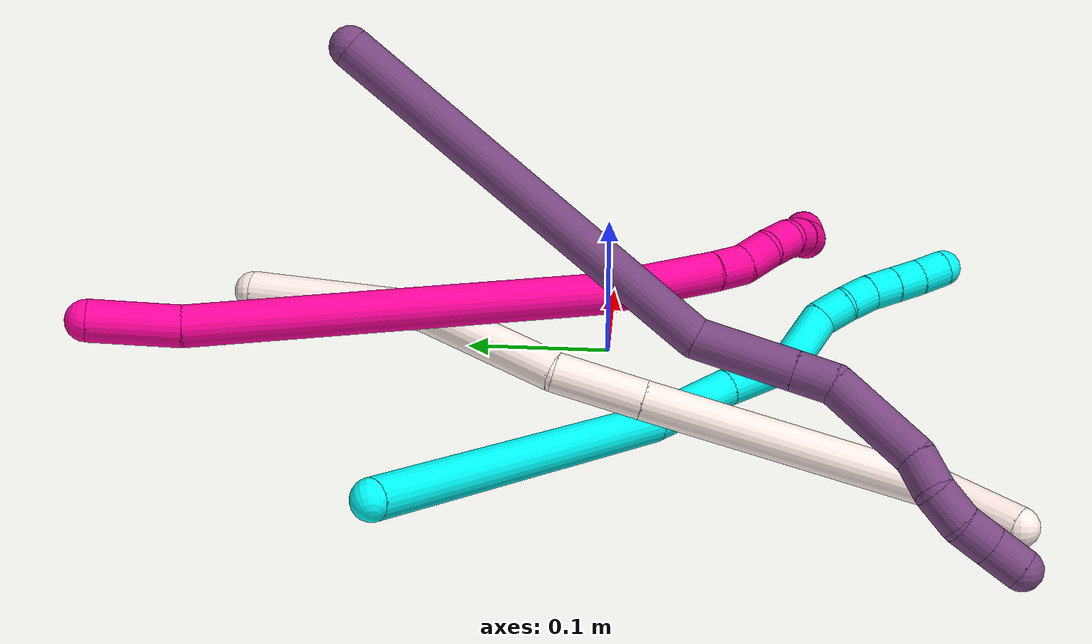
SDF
<sdf version="1.7">
 <world name="default">
  <model name="3">
   <static>0</static>
   <link name="3">
    <collision name="collision-cylinder-e_1_1_4">
     <pose>0.080593 -0.060833 -0.06502 2.38946 0.735635 1.54643</pose>
     <geometry><cylinder><radius>0.0125</radius><length>0.240195</length></cylinder></geometry>
     <surface>
      <friction><ode><mu>1.16</mu><mu2>1.16</mu2><slip1>0</slip1><slip2>0</slip2></ode></friction>
      <contact><ode><kp>1e+06</kp><kd>1</kd><max_vel>0</max_vel><min_depth>0.001</min_depth></ode></contact>
     </surface>
    </collision>
    <visual name="visual-cylinder-e_1_1_4">
     <pose>0.080593 -0.060833 -0.06502 2.38946 0.735635 1.54643</pose>
     <geometry><cylinder><radius>0.0125</radius><length>0.240195</length></cylinder></geometry>
     <material><ambient>0.003922 1 0.996078 1</ambient></material>
    </visual>
    <collision name="collision-cylinder-e_2_4_5">
     <pose>0.187488 -0.127334 -0.144633 2.77107 1.03395 2.50477</pose>
     <geometry><cylinder><radius>0.0125</radius><length>0.061216</length></cylinder></geometry>
     <surface>
      <friction><ode><mu>1.16</mu><mu2>1.16</mu2><slip1>0</slip1><slip2>0</slip2></ode></friction>
      <contact><ode><kp>1e+06</kp><kd>1</kd><max_vel>0</max_vel><min_depth>0.001</min_depth></ode></contact>
     </surface>
    </collision>
    <visual name="visual-cylinder-e_2_4_5">
     <pose>0.187488 -0.127334 -0.144633 2.77107 1.03395 2.50477</pose>
     <geometry><cylinder><radius>0.0125</radius><length>0.061216</length></cylinder></geometry>
     <material><ambient>0.003922 1 0.996078 1</ambient></material>
    </visual>
    <collision name="collision-cylinder-e_3_5_6">
     <pose>0.23682 -0.13837 -0.170053 2.68146 1.0875 2.40236</pose>
     <geometry><cylinder><radius>0.0125</radius><length>0.052018</length></cylinder></geometry>
     <surface>
      <friction><ode><mu>1.16</mu><mu2>1.16</mu2><slip1>0</slip1><slip2>0</slip2></ode></friction>
      <contact><ode><kp>1e+06</kp><kd>1</kd><max_vel>0</max_vel><min_depth>0.001</min_depth></ode></contact>
     </surface>
    </collision>
    <visual name="visual-cylinder-e_3_5_6">
     <pose>0.23682 -0.13837 -0.170053 2.68146 1.0875 2.40236</pose>
     <geometry><cylinder><radius>0.0125</radius><length>0.052018</length></cylinder></geometry>
     <material><ambient>0.003922 1 0.996078 1</ambient></material>
    </visual>
    <collision name="collision-cylinder-e_4_6_7">
     <pose>0.274012 -0.14285 -0.197522 -3.08834 0.704426 -2.99693</pose>
     <geometry><cylinder><radius>0.0125</radius><length>0.043736</length></cylinder></geometry>
     <surface>
      <friction><ode><mu>1.16</mu><mu2>1.16</mu2><slip1>0</slip1><slip2>0</slip2></ode></friction>
      <contact><ode><kp>1e+06</kp><kd>1</kd><max_vel>0</max_vel><min_depth>0.001</min_depth></ode></contact>
     </surface>
    </collision>
    <visual name="visual-cylinder-e_4_6_7">
     <pose>0.274012 -0.14285 -0.197522 -3.08834 0.704426 -2.99693</pose>
     <geometry><cylinder><radius>0.0125</radius><length>0.043736</length></cylinder></geometry>
     <material><ambient>0.003922 1 0.996078 1</ambient></material>
    </visual>
    <collision name="collision-cylinder-e_5_7_8">
     <pose>0.298291 -0.141198 -0.218164 -2.95271 1.18792 -2.86287</pose>
     <geometry><cylinder><radius>0.0125</radius><length>0.021816</length></cylinder></geometry>
     <surface>
      <friction><ode><mu>1.16</mu><mu2>1.16</mu2><slip1>0</slip1><slip2>0</slip2></ode></friction>
      <contact><ode><kp>1e+06</kp><kd>1</kd><max_vel>0</max_vel><min_depth>0.001</min_depth></ode></contact>
     </surface>
    </collision>
    <visual name="visual-cylinder-e_5_7_8">
     <pose>0.298291 -0.141198 -0.218164 -2.95271 1.18792 -2.86287</pose>
     <geometry><cylinder><radius>0.0125</radius><length>0.021816</length></cylinder></geometry>
     <material><ambient>0.003922 1 0.996078 1</ambient></material>
    </visual>
    <collision name="collision-cylinder-e_6_8_9">
     <pose>0.317507 -0.141784 -0.226795 2.85741 1.08349 2.67484</pose>
     <geometry><cylinder><radius>0.0125</radius><length>0.020593</length></cylinder></geometry>
     <surface>
      <friction><ode><mu>1.16</mu><mu2>1.16</mu2><slip1>0</slip1><slip2>0</slip2></ode></friction>
      <contact><ode><kp>1e+06</kp><kd>1</kd><max_vel>0</max_vel><min_depth>0.001</min_depth></ode></contact>
     </surface>
    </collision>
    <visual name="visual-cylinder-e_6_8_9">
     <pose>0.317507 -0.141784 -0.226795 2.85741 1.08349 2.67484</pose>
     <geometry><cylinder><radius>0.0125</radius><length>0.020593</length></cylinder></geometry>
     <material><ambient>0.003922 1 0.996078 1</ambient></material>
    </visual>
    <collision name="collision-cylinder-e_7_9_10">
     <pose>0.335987 -0.144768 -0.234488 2.6523 1.21628 2.45294</pose>
     <geometry><cylinder><radius>0.0125</radius><length>0.020007</length></cylinder></geometry>
     <surface>
      <friction><ode><mu>1.16</mu><mu2>1.16</mu2><slip1>0</slip1><slip2>0</slip2></ode></friction>
      <contact><ode><kp>1e+06</kp><kd>1</kd><max_vel>0</max_vel><min_depth>0.001</min_depth></ode></contact>
     </surface>
    </collision>
    <visual name="visual-cylinder-e_7_9_10">
     <pose>0.335987 -0.144768 -0.234488 2.6523 1.21628 2.45294</pose>
     <geometry><cylinder><radius>0.0125</radius><length>0.020007</length></cylinder></geometry>
     <material><ambient>0.003922 1 0.996078 1</ambient></material>
    </visual>
    <collision name="collision-cylinder-e_8_10_11">
     <pose>0.354781 -0.148074 -0.240721 2.6557 1.20708 2.45131</pose>
     <geometry><cylinder><radius>0.0125</radius><length>0.020144</length></cylinder></geometry>
     <surface>
      <friction><ode><mu>1.16</mu><mu2>1.16</mu2><slip1>0</slip1><slip2>0</slip2></ode></friction>
      <contact><ode><kp>1e+06</kp><kd>1</kd><max_vel>0</max_vel><min_depth>0.001</min_depth></ode></contact>
     </surface>
    </collision>
    <visual name="visual-cylinder-e_8_10_11">
     <pose>0.354781 -0.148074 -0.240721 2.6557 1.20708 2.45131</pose>
     <geometry><cylinder><radius>0.0125</radius><length>0.020144</length></cylinder></geometry>
     <material><ambient>0.003922 1 0.996078 1</ambient></material>
    </visual>
    <collision name="collision-cylinder-e_9_11_2">
     <pose>0.373804 -0.150683 -0.246978 2.84717 1.24684 2.73486</pose>
     <geometry><cylinder><radius>0.0125</radius><length>0.020275</length></cylinder></geometry>
     <surface>
      <friction><ode><mu>1.16</mu><mu2>1.16</mu2><slip1>0</slip1><slip2>0</slip2></ode></friction>
      <contact><ode><kp>1e+06</kp><kd>1</kd><max_vel>0</max_vel><min_depth>0.001</min_depth></ode></contact>
     </surface>
    </collision>
    <visual name="visual-cylinder-e_9_11_2">
     <pose>0.373804 -0.150683 -0.246978 2.84717 1.24684 2.73486</pose>
     <geometry><cylinder><radius>0.0125</radius><length>0.020275</length></cylinder></geometry>
     <material><ambient>0.003922 1 0.996078 1</ambient></material>
    </visual>
    <collision name="collision-sphere-2">
     <pose>0.383415 -0.15162 -0.250066 0 -0 0</pose>
     <geometry><sphere><radius>0.0125</radius></sphere></geometry>
     <surface>
      <friction><ode><mu>1.16</mu><mu2>1.16</mu2><slip1>0</slip1><slip2>0</slip2></ode></friction>
      <contact><ode><kp>1e+06</kp><kd>1</kd><max_vel>0</max_vel><min_depth>0.001</min_depth></ode></contact>
     </surface>
    </collision>
    <visual name="visual-sphere-2">
     <pose>0.383415 -0.15162 -0.250066 0 -0 0</pose>
     <geometry><sphere><radius>0.0125</radius></sphere></geometry>
     <material><ambient>0.003922 1 0.996078 1</ambient></material>
    </visual>
    <collision name="collision-sphere-11">
     <pose>0.364194 -0.149747 -0.24389 0 -0 0</pose>
     <geometry><sphere><radius>0.0125</radius></sphere></geometry>
     <surface>
      <friction><ode><mu>1.16</mu><mu2>1.16</mu2><slip1>0</slip1><slip2>0</slip2></ode></friction>
      <contact><ode><kp>1e+06</kp><kd>1</kd><max_vel>0</max_vel><min_depth>0.001</min_depth></ode></contact>
     </surface>
    </collision>
    <visual name="visual-sphere-11">
     <pose>0.364194 -0.149747 -0.24389 0 -0 0</pose>
     <geometry><sphere><radius>0.0125</radius></sphere></geometry>
     <material><ambient>0.003922 1 0.996078 1</ambient></material>
    </visual>
    <collision name="collision-sphere-10">
     <pose>0.345368 -0.1464 -0.237553 0 -0 0</pose>
     <geometry><sphere><radius>0.0125</radius></sphere></geometry>
     <surface>
      <friction><ode><mu>1.16</mu><mu2>1.16</mu2><slip1>0</slip1><slip2>0</slip2></ode></friction>
      <contact><ode><kp>1e+06</kp><kd>1</kd><max_vel>0</max_vel><min_depth>0.001</min_depth></ode></contact>
     </surface>
    </collision>
    <visual name="visual-sphere-10">
     <pose>0.345368 -0.1464 -0.237553 0 -0 0</pose>
     <geometry><sphere><radius>0.0125</radius></sphere></geometry>
     <material><ambient>0.003922 1 0.996078 1</ambient></material>
    </visual>
    <collision name="collision-sphere-9">
     <pose>0.326605 -0.143136 -0.231423 0 -0 0</pose>
     <geometry><sphere><radius>0.0125</radius></sphere></geometry>
     <surface>
      <friction><ode><mu>1.16</mu><mu2>1.16</mu2><slip1>0</slip1><slip2>0</slip2></ode></friction>
      <contact><ode><kp>1e+06</kp><kd>1</kd><max_vel>0</max_vel><min_depth>0.001</min_depth></ode></contact>
     </surface>
    </collision>
    <visual name="visual-sphere-9">
     <pose>0.326605 -0.143136 -0.231423 0 -0 0</pose>
     <geometry><sphere><radius>0.0125</radius></sphere></geometry>
     <material><ambient>0.003922 1 0.996078 1</ambient></material>
    </visual>
    <collision name="collision-sphere-4">
     <pose>0.161185 -0.121666 -0.130041 0 -0 0</pose>
     <geometry><sphere><radius>0.0125</radius></sphere></geometry>
     <surface>
      <friction><ode><mu>1.16</mu><mu2>1.16</mu2><slip1>0</slip1><slip2>0</slip2></ode></friction>
      <contact><ode><kp>1e+06</kp><kd>1</kd><max_vel>0</max_vel><min_depth>0.001</min_depth></ode></contact>
     </surface>
    </collision>
    <visual name="visual-sphere-4">
     <pose>0.161185 -0.121666 -0.130041 0 -0 0</pose>
     <geometry><sphere><radius>0.0125</radius></sphere></geometry>
     <material><ambient>0.003922 1 0.996078 1</ambient></material>
    </visual>
    <collision name="collision-sphere-1">
     <geometry><sphere><radius>0.0125</radius></sphere></geometry>
     <surface>
      <friction><ode><mu>1.16</mu><mu2>1.16</mu2><slip1>0</slip1><slip2>0</slip2></ode></friction>
      <contact><ode><kp>1e+06</kp><kd>1</kd><max_vel>0</max_vel><min_depth>0.001</min_depth></ode></contact>
     </surface>
    </collision>
    <visual name="visual-sphere-1">
     <geometry><sphere><radius>0.0125</radius></sphere></geometry>
     <material><ambient>0.003922 1 0.996078 1</ambient></material>
    </visual>
    <collision name="collision-sphere-8">
     <pose>0.308409 -0.140433 -0.222167 0 -0 0</pose>
     <geometry><sphere><radius>0.0125</radius></sphere></geometry>
     <surface>
      <friction><ode><mu>1.16</mu><mu2>1.16</mu2><slip1>0</slip1><slip2>0</slip2></ode></friction>
      <contact><ode><kp>1e+06</kp><kd>1</kd><max_vel>0</max_vel><min_depth>0.001</min_depth></ode></contact>
     </surface>
    </collision>
    <visual name="visual-sphere-8">
     <pose>0.308409 -0.140433 -0.222167 0 -0 0</pose>
     <geometry><sphere><radius>0.0125</radius></sphere></geometry>
     <material><ambient>0.003922 1 0.996078 1</ambient></material>
    </visual>
    <collision name="collision-sphere-5">
     <pose>0.21379 -0.133002 -0.159224 0 -0 0</pose>
     <geometry><sphere><radius>0.0125</radius></sphere></geometry>
     <surface>
      <friction><ode><mu>1.16</mu><mu2>1.16</mu2><slip1>0</slip1><slip2>0</slip2></ode></friction>
      <contact><ode><kp>1e+06</kp><kd>1</kd><max_vel>0</max_vel><min_depth>0.001</min_depth></ode></contact>
     </surface>
    </collision>
    <visual name="visual-sphere-5">
     <pose>0.21379 -0.133002 -0.159224 0 -0 0</pose>
     <geometry><sphere><radius>0.0125</radius></sphere></geometry>
     <material><ambient>0.003922 1 0.996078 1</ambient></material>
    </visual>
    <collision name="collision-sphere-6">
     <pose>0.25985 -0.143737 -0.180883 0 -0 0</pose>
     <geometry><sphere><radius>0.0125</radius></sphere></geometry>
     <surface>
      <friction><ode><mu>1.16</mu><mu2>1.16</mu2><slip1>0</slip1><slip2>0</slip2></ode></friction>
      <contact><ode><kp>1e+06</kp><kd>1</kd><max_vel>0</max_vel><min_depth>0.001</min_depth></ode></contact>
     </surface>
    </collision>
    <visual name="visual-sphere-6">
     <pose>0.25985 -0.143737 -0.180883 0 -0 0</pose>
     <geometry><sphere><radius>0.0125</radius></sphere></geometry>
     <material><ambient>0.003922 1 0.996078 1</ambient></material>
    </visual>
    <collision name="collision-sphere-7">
     <pose>0.288173 -0.141963 -0.214161 0 -0 0</pose>
     <geometry><sphere><radius>0.0125</radius></sphere></geometry>
     <surface>
      <friction><ode><mu>1.16</mu><mu2>1.16</mu2><slip1>0</slip1><slip2>0</slip2></ode></friction>
      <contact><ode><kp>1e+06</kp><kd>1</kd><max_vel>0</max_vel><min_depth>0.001</min_depth></ode></contact>
     </surface>
    </collision>
    <visual name="visual-sphere-7">
     <pose>0.288173 -0.141963 -0.214161 0 -0 0</pose>
     <geometry><sphere><radius>0.0125</radius></sphere></geometry>
     <material><ambient>0.003922 1 0.996078 1</ambient></material>
    </visual>
    <inertial>
     <pose>0.179263 -0.101573 -0.131868 0 -0 0</pose>
     <mass>0.5</mass>
     <inertia>
      <ixx>0.000902</ixx>
      <ixy>0</ixy>
      <ixz>0</ixz>
      <iyy>0.001424</iyy>
      <iyz>0</iyz>
      <izz>-0.000247</izz>
     </inertia>
    </inertial>
   </link>
   <pose>-0.316719 0.113339 0.067138 1.85471 -0.187042 -1.42688</pose>
  </model>
  <model name="11">
   <static>0</static>
   <link name="11">
    <collision name="collision-cylinder-e_1_1_4">
     <pose>0.000715 -0.006478 -0.055699 3.0258 0.012753 0.219152</pose>
     <geometry><cylinder><radius>0.0125</radius><length>0.112158</length></cylinder></geometry>
     <surface>
      <friction><ode><mu>1.16</mu><mu2>1.16</mu2><slip1>0</slip1><slip2>0</slip2></ode></friction>
      <contact><ode><kp>1e+06</kp><kd>1</kd><max_vel>0</max_vel><min_depth>0.001</min_depth></ode></contact>
     </surface>
    </collision>
    <visual name="visual-cylinder-e_1_1_4">
     <pose>0.000715 -0.006478 -0.055699 3.0258 0.012753 0.219152</pose>
     <geometry><cylinder><radius>0.0125</radius><length>0.112158</length></cylinder></geometry>
     <material><ambient>1 0.933333 0.909804 1</ambient></material>
    </visual>
    <collision name="collision-cylinder-e_2_4_5">
     <pose>-0.000985 -0.031487 -0.153721 2.7289 -0.05223 -0.248289</pose>
     <geometry><cylinder><radius>0.0125</radius><length>0.09253</length></cylinder></geometry>
     <surface>
      <friction><ode><mu>1.16</mu><mu2>1.16</mu2><slip1>0</slip1><slip2>0</slip2></ode></friction>
      <contact><ode><kp>1e+06</kp><kd>1</kd><max_vel>0</max_vel><min_depth>0.001</min_depth></ode></contact>
     </surface>
    </collision>
    <visual name="visual-cylinder-e_2_4_5">
     <pose>-0.000985 -0.031487 -0.153721 2.7289 -0.05223 -0.248289</pose>
     <geometry><cylinder><radius>0.0125</radius><length>0.09253</length></cylinder></geometry>
     <material><ambient>1 0.933333 0.909804 1</ambient></material>
    </visual>
    <collision name="collision-cylinder-e_3_5_6">
     <pose>-0.009142 -0.05601 -0.223088 2.92353 -0.204404 -1.50567</pose>
     <geometry><cylinder><radius>0.0125</radius><length>0.056577</length></cylinder></geometry>
     <surface>
      <friction><ode><mu>1.16</mu><mu2>1.16</mu2><slip1>0</slip1><slip2>0</slip2></ode></friction>
      <contact><ode><kp>1e+06</kp><kd>1</kd><max_vel>0</max_vel><min_depth>0.001</min_depth></ode></contact>
     </surface>
    </collision>
    <visual name="visual-cylinder-e_3_5_6">
     <pose>-0.009142 -0.05601 -0.223088 2.92353 -0.204404 -1.50567</pose>
     <geometry><cylinder><radius>0.0125</radius><length>0.056577</length></cylinder></geometry>
     <material><ambient>1 0.933333 0.909804 1</ambient></material>
    </visual>
    <collision name="collision-cylinder-e_4_6_7">
     <pose>-0.034209 -0.080627 -0.339801 2.93681 -0.207957 -1.58626</pose>
     <geometry><cylinder><radius>0.0125</radius><length>0.1872</length></cylinder></geometry>
     <surface>
      <friction><ode><mu>1.16</mu><mu2>1.16</mu2><slip1>0</slip1><slip2>0</slip2></ode></friction>
      <contact><ode><kp>1e+06</kp><kd>1</kd><max_vel>0</max_vel><min_depth>0.001</min_depth></ode></contact>
     </surface>
    </collision>
    <visual name="visual-cylinder-e_4_6_7">
     <pose>-0.034209 -0.080627 -0.339801 2.93681 -0.207957 -1.58626</pose>
     <geometry><cylinder><radius>0.0125</radius><length>0.1872</length></cylinder></geometry>
     <material><ambient>1 0.933333 0.909804 1</ambient></material>
    </visual>
    <collision name="collision-cylinder-e_5_7_2">
     <pose>-0.048521 -0.111887 -0.45136 2.61806 0.195815 0.702807</pose>
     <geometry><cylinder><radius>0.0125</radius><length>0.051535</length></cylinder></geometry>
     <surface>
      <friction><ode><mu>1.16</mu><mu2>1.16</mu2><slip1>0</slip1><slip2>0</slip2></ode></friction>
      <contact><ode><kp>1e+06</kp><kd>1</kd><max_vel>0</max_vel><min_depth>0.001</min_depth></ode></contact>
     </surface>
    </collision>
    <visual name="visual-cylinder-e_5_7_2">
     <pose>-0.048521 -0.111887 -0.45136 2.61806 0.195815 0.702807</pose>
     <geometry><cylinder><radius>0.0125</radius><length>0.051535</length></cylinder></geometry>
     <material><ambient>1 0.933333 0.909804 1</ambient></material>
    </visual>
    <collision name="collision-sphere-2">
     <pose>-0.043507 -0.124523 -0.47325 0 -0 0</pose>
     <geometry><sphere><radius>0.0125</radius></sphere></geometry>
     <surface>
      <friction><ode><mu>1.16</mu><mu2>1.16</mu2><slip1>0</slip1><slip2>0</slip2></ode></friction>
      <contact><ode><kp>1e+06</kp><kd>1</kd><max_vel>0</max_vel><min_depth>0.001</min_depth></ode></contact>
     </surface>
    </collision>
    <visual name="visual-sphere-2">
     <pose>-0.043507 -0.124523 -0.47325 0 -0 0</pose>
     <geometry><sphere><radius>0.0125</radius></sphere></geometry>
     <material><ambient>1 0.933333 0.909804 1</ambient></material>
    </visual>
    <collision name="collision-sphere-7">
     <pose>-0.053534 -0.099251 -0.42947 0 -0 0</pose>
     <geometry><sphere><radius>0.0125</radius></sphere></geometry>
     <surface>
      <friction><ode><mu>1.16</mu><mu2>1.16</mu2><slip1>0</slip1><slip2>0</slip2></ode></friction>
      <contact><ode><kp>1e+06</kp><kd>1</kd><max_vel>0</max_vel><min_depth>0.001</min_depth></ode></contact>
     </surface>
    </collision>
    <visual name="visual-sphere-7">
     <pose>-0.053534 -0.099251 -0.42947 0 -0 0</pose>
     <geometry><sphere><radius>0.0125</radius></sphere></geometry>
     <material><ambient>1 0.933333 0.909804 1</ambient></material>
    </visual>
    <collision name="collision-sphere-6">
     <pose>-0.014885 -0.062003 -0.250131 0 -0 0</pose>
     <geometry><sphere><radius>0.0125</radius></sphere></geometry>
     <surface>
      <friction><ode><mu>1.16</mu><mu2>1.16</mu2><slip1>0</slip1><slip2>0</slip2></ode></friction>
      <contact><ode><kp>1e+06</kp><kd>1</kd><max_vel>0</max_vel><min_depth>0.001</min_depth></ode></contact>
     </surface>
    </collision>
    <visual name="visual-sphere-6">
     <pose>-0.014885 -0.062003 -0.250131 0 -0 0</pose>
     <geometry><sphere><radius>0.0125</radius></sphere></geometry>
     <material><ambient>1 0.933333 0.909804 1</ambient></material>
    </visual>
    <collision name="collision-sphere-5">
     <pose>-0.0034 -0.050018 -0.196044 0 -0 0</pose>
     <geometry><sphere><radius>0.0125</radius></sphere></geometry>
     <surface>
      <friction><ode><mu>1.16</mu><mu2>1.16</mu2><slip1>0</slip1><slip2>0</slip2></ode></friction>
      <contact><ode><kp>1e+06</kp><kd>1</kd><max_vel>0</max_vel><min_depth>0.001</min_depth></ode></contact>
     </surface>
    </collision>
    <visual name="visual-sphere-5">
     <pose>-0.0034 -0.050018 -0.196044 0 -0 0</pose>
     <geometry><sphere><radius>0.0125</radius></sphere></geometry>
     <material><ambient>1 0.933333 0.909804 1</ambient></material>
    </visual>
    <collision name="collision-sphere-1">
     <geometry><sphere><radius>0.0125</radius></sphere></geometry>
     <surface>
      <friction><ode><mu>1.16</mu><mu2>1.16</mu2><slip1>0</slip1><slip2>0</slip2></ode></friction>
      <contact><ode><kp>1e+06</kp><kd>1</kd><max_vel>0</max_vel><min_depth>0.001</min_depth></ode></contact>
     </surface>
    </collision>
    <visual name="visual-sphere-1">
     <geometry><sphere><radius>0.0125</radius></sphere></geometry>
     <material><ambient>1 0.933333 0.909804 1</ambient></material>
    </visual>
    <collision name="collision-sphere-4">
     <pose>0.00143 -0.012957 -0.111398 0 -0 0</pose>
     <geometry><sphere><radius>0.0125</radius></sphere></geometry>
     <surface>
      <friction><ode><mu>1.16</mu><mu2>1.16</mu2><slip1>0</slip1><slip2>0</slip2></ode></friction>
      <contact><ode><kp>1e+06</kp><kd>1</kd><max_vel>0</max_vel><min_depth>0.001</min_depth></ode></contact>
     </surface>
    </collision>
    <visual name="visual-sphere-4">
     <pose>0.00143 -0.012957 -0.111398 0 -0 0</pose>
     <geometry><sphere><radius>0.0125</radius></sphere></geometry>
     <material><ambient>1 0.933333 0.909804 1</ambient></material>
    </visual>
    <inertial>
     <pose>-0.018865 -0.055337 -0.239928 0 -0 0</pose>
     <mass>0.5</mass>
     <inertia>
      <ixx>-0.000355</ixx>
      <ixy>0</ixy>
      <ixz>0</ixz>
      <iyy>-0.000707</iyy>
      <iyz>0</iyz>
      <izz>0.000243</izz>
     </inertia>
    </inertial>
   </link>
   <pose>-0.128608 0.218988 0.10037 1.64789 -0.915953 3.01627</pose>
  </model>
  <model name="18">
   <static>0</static>
   <link name="18">
    <collision name="collision-cylinder-e_1_1_4">
     <pose>-0.001623 -0.008013 -0.02561 2.83837 -0.060396 -0.390392</pose>
     <geometry><cylinder><radius>0.0125</radius><length>0.053766</length></cylinder></geometry>
     <surface>
      <friction><ode><mu>1.16</mu><mu2>1.16</mu2><slip1>0</slip1><slip2>0</slip2></ode></friction>
      <contact><ode><kp>1e+06</kp><kd>1</kd><max_vel>0</max_vel><min_depth>0.001</min_depth></ode></contact>
     </surface>
    </collision>
    <visual name="visual-cylinder-e_1_1_4">
     <pose>-0.001623 -0.008013 -0.02561 2.83837 -0.060396 -0.390392</pose>
     <geometry><cylinder><radius>0.0125</radius><length>0.053766</length></cylinder></geometry>
     <material><ambient>1 0.007843 0.615686 1</ambient></material>
    </visual>
    <collision name="collision-cylinder-e_2_4_5">
     <pose>-0.004678 -0.068273 -0.163114 2.70474 -0.011601 -0.052254</pose>
     <geometry><cylinder><radius>0.0125</radius><length>0.246999</length></cylinder></geometry>
     <surface>
      <friction><ode><mu>1.16</mu><mu2>1.16</mu2><slip1>0</slip1><slip2>0</slip2></ode></friction>
      <contact><ode><kp>1e+06</kp><kd>1</kd><max_vel>0</max_vel><min_depth>0.001</min_depth></ode></contact>
     </surface>
    </collision>
    <visual name="visual-cylinder-e_2_4_5">
     <pose>-0.004678 -0.068273 -0.163114 2.70474 -0.011601 -0.052254</pose>
     <geometry><cylinder><radius>0.0125</radius><length>0.246999</length></cylinder></geometry>
     <material><ambient>1 0.007843 0.615686 1</ambient></material>
    </visual>
    <collision name="collision-cylinder-e_3_5_6">
     <pose>0.003053 -0.136302 -0.30868 2.70333 0.24162 0.998166</pose>
     <geometry><cylinder><radius>0.0125</radius><length>0.076598</length></cylinder></geometry>
     <surface>
      <friction><ode><mu>1.16</mu><mu2>1.16</mu2><slip1>0</slip1><slip2>0</slip2></ode></friction>
      <contact><ode><kp>1e+06</kp><kd>1</kd><max_vel>0</max_vel><min_depth>0.001</min_depth></ode></contact>
     </surface>
    </collision>
    <visual name="visual-cylinder-e_3_5_6">
     <pose>0.003053 -0.136302 -0.30868 2.70333 0.24162 0.998166</pose>
     <geometry><cylinder><radius>0.0125</radius><length>0.076598</length></cylinder></geometry>
     <material><ambient>1 0.007843 0.615686 1</ambient></material>
    </visual>
    <collision name="collision-cylinder-e_4_6_7">
     <pose>0.015863 -0.156343 -0.351564 2.70843 0.344812 1.33895</pose>
     <geometry><cylinder><radius>0.0125</radius><length>0.02157</length></cylinder></geometry>
     <surface>
      <friction><ode><mu>1.16</mu><mu2>1.16</mu2><slip1>0</slip1><slip2>0</slip2></ode></friction>
      <contact><ode><kp>1e+06</kp><kd>1</kd><max_vel>0</max_vel><min_depth>0.001</min_depth></ode></contact>
     </surface>
    </collision>
    <visual name="visual-cylinder-e_4_6_7">
     <pose>0.015863 -0.156343 -0.351564 2.70843 0.344812 1.33895</pose>
     <geometry><cylinder><radius>0.0125</radius><length>0.02157</length></cylinder></geometry>
     <material><ambient>1 0.007843 0.615686 1</ambient></material>
    </visual>
    <collision name="collision-cylinder-e_5_7_8">
     <pose>0.023635 -0.166707 -0.367612 2.41274 0.423159 1.02566</pose>
     <geometry><cylinder><radius>0.0125</radius><length>0.0201</length></cylinder></geometry>
     <surface>
      <friction><ode><mu>1.16</mu><mu2>1.16</mu2><slip1>0</slip1><slip2>0</slip2></ode></friction>
      <contact><ode><kp>1e+06</kp><kd>1</kd><max_vel>0</max_vel><min_depth>0.001</min_depth></ode></contact>
     </surface>
    </collision>
    <visual name="visual-cylinder-e_5_7_8">
     <pose>0.023635 -0.166707 -0.367612 2.41274 0.423159 1.02566</pose>
     <geometry><cylinder><radius>0.0125</radius><length>0.0201</length></cylinder></geometry>
     <material><ambient>1 0.007843 0.615686 1</ambient></material>
    </visual>
    <collision name="collision-cylinder-e_6_8_9">
     <pose>0.033882 -0.176635 -0.381988 2.67212 0.626532 1.86971</pose>
     <geometry><cylinder><radius>0.0125</radius><length>0.020873</length></cylinder></geometry>
     <surface>
      <friction><ode><mu>1.16</mu><mu2>1.16</mu2><slip1>0</slip1><slip2>0</slip2></ode></friction>
      <contact><ode><kp>1e+06</kp><kd>1</kd><max_vel>0</max_vel><min_depth>0.001</min_depth></ode></contact>
     </surface>
    </collision>
    <visual name="visual-cylinder-e_6_8_9">
     <pose>0.033882 -0.176635 -0.381988 2.67212 0.626532 1.86971</pose>
     <geometry><cylinder><radius>0.0125</radius><length>0.020873</length></cylinder></geometry>
     <material><ambient>1 0.007843 0.615686 1</ambient></material>
    </visual>
    <collision name="collision-cylinder-e_7_9_10">
     <pose>0.047339 -0.180336 -0.396365 -3.12359 0.820582 -3.10022</pose>
     <geometry><cylinder><radius>0.0125</radius><length>0.020061</length></cylinder></geometry>
     <surface>
      <friction><ode><mu>1.16</mu><mu2>1.16</mu2><slip1>0</slip1><slip2>0</slip2></ode></friction>
      <contact><ode><kp>1e+06</kp><kd>1</kd><max_vel>0</max_vel><min_depth>0.001</min_depth></ode></contact>
     </surface>
    </collision>
    <visual name="visual-cylinder-e_7_9_10">
     <pose>0.047339 -0.180336 -0.396365 -3.12359 0.820582 -3.10022</pose>
     <geometry><cylinder><radius>0.0125</radius><length>0.020061</length></cylinder></geometry>
     <material><ambient>1 0.007843 0.615686 1</ambient></material>
    </visual>
    <collision name="collision-cylinder-e_8_10_11">
     <pose>0.062184 -0.178557 -0.409619 -2.889 0.847658 -2.59292</pose>
     <geometry><cylinder><radius>0.0125</radius><length>0.020026</length></cylinder></geometry>
     <surface>
      <friction><ode><mu>1.16</mu><mu2>1.16</mu2><slip1>0</slip1><slip2>0</slip2></ode></friction>
      <contact><ode><kp>1e+06</kp><kd>1</kd><max_vel>0</max_vel><min_depth>0.001</min_depth></ode></contact>
     </surface>
    </collision>
    <visual name="visual-cylinder-e_8_10_11">
     <pose>0.062184 -0.178557 -0.409619 -2.889 0.847658 -2.59292</pose>
     <geometry><cylinder><radius>0.0125</radius><length>0.020026</length></cylinder></geometry>
     <material><ambient>1 0.007843 0.615686 1</ambient></material>
    </visual>
    <collision name="collision-cylinder-e_9_11_2">
     <pose>0.079423 -0.176901 -0.418348 -3.14156 1.33739 -3.14155</pose>
     <geometry><cylinder><radius>0.0125</radius><length>0.020006</length></cylinder></geometry>
     <surface>
      <friction><ode><mu>1.16</mu><mu2>1.16</mu2><slip1>0</slip1><slip2>0</slip2></ode></friction>
      <contact><ode><kp>1e+06</kp><kd>1</kd><max_vel>0</max_vel><min_depth>0.001</min_depth></ode></contact>
     </surface>
    </collision>
    <visual name="visual-cylinder-e_9_11_2">
     <pose>0.079423 -0.176901 -0.418348 -3.14156 1.33739 -3.14155</pose>
     <geometry><cylinder><radius>0.0125</radius><length>0.020006</length></cylinder></geometry>
     <material><ambient>1 0.007843 0.615686 1</ambient></material>
    </visual>
    <collision name="collision-sphere-2">
     <pose>0.089155 -0.176901 -0.420662 0 -0 0</pose>
     <geometry><sphere><radius>0.0125</radius></sphere></geometry>
     <surface>
      <friction><ode><mu>1.16</mu><mu2>1.16</mu2><slip1>0</slip1><slip2>0</slip2></ode></friction>
      <contact><ode><kp>1e+06</kp><kd>1</kd><max_vel>0</max_vel><min_depth>0.001</min_depth></ode></contact>
     </surface>
    </collision>
    <visual name="visual-sphere-2">
     <pose>0.089155 -0.176901 -0.420662 0 -0 0</pose>
     <geometry><sphere><radius>0.0125</radius></sphere></geometry>
     <material><ambient>1 0.007843 0.615686 1</ambient></material>
    </visual>
    <collision name="collision-sphere-11">
     <pose>0.069691 -0.176901 -0.416034 0 -0 0</pose>
     <geometry><sphere><radius>0.0125</radius></sphere></geometry>
     <surface>
      <friction><ode><mu>1.16</mu><mu2>1.16</mu2><slip1>0</slip1><slip2>0</slip2></ode></friction>
      <contact><ode><kp>1e+06</kp><kd>1</kd><max_vel>0</max_vel><min_depth>0.001</min_depth></ode></contact>
     </surface>
    </collision>
    <visual name="visual-sphere-11">
     <pose>0.069691 -0.176901 -0.416034 0 -0 0</pose>
     <geometry><sphere><radius>0.0125</radius></sphere></geometry>
     <material><ambient>1 0.007843 0.615686 1</ambient></material>
    </visual>
    <collision name="collision-sphere-10">
     <pose>0.054677 -0.180213 -0.403203 0 -0 0</pose>
     <geometry><sphere><radius>0.0125</radius></sphere></geometry>
     <surface>
      <friction><ode><mu>1.16</mu><mu2>1.16</mu2><slip1>0</slip1><slip2>0</slip2></ode></friction>
      <contact><ode><kp>1e+06</kp><kd>1</kd><max_vel>0</max_vel><min_depth>0.001</min_depth></ode></contact>
     </surface>
    </collision>
    <visual name="visual-sphere-10">
     <pose>0.054677 -0.180213 -0.403203 0 -0 0</pose>
     <geometry><sphere><radius>0.0125</radius></sphere></geometry>
     <material><ambient>1 0.007843 0.615686 1</ambient></material>
    </visual>
    <collision name="collision-sphere-9">
     <pose>0.040001 -0.180459 -0.389527 0 -0 0</pose>
     <geometry><sphere><radius>0.0125</radius></sphere></geometry>
     <surface>
      <friction><ode><mu>1.16</mu><mu2>1.16</mu2><slip1>0</slip1><slip2>0</slip2></ode></friction>
      <contact><ode><kp>1e+06</kp><kd>1</kd><max_vel>0</max_vel><min_depth>0.001</min_depth></ode></contact>
     </surface>
    </collision>
    <visual name="visual-sphere-9">
     <pose>0.040001 -0.180459 -0.389527 0 -0 0</pose>
     <geometry><sphere><radius>0.0125</radius></sphere></geometry>
     <material><ambient>1 0.007843 0.615686 1</ambient></material>
    </visual>
    <collision name="collision-sphere-4">
     <pose>-0.003245 -0.016025 -0.05122 0 -0 0</pose>
     <geometry><sphere><radius>0.0125</radius></sphere></geometry>
     <surface>
      <friction><ode><mu>1.16</mu><mu2>1.16</mu2><slip1>0</slip1><slip2>0</slip2></ode></friction>
      <contact><ode><kp>1e+06</kp><kd>1</kd><max_vel>0</max_vel><min_depth>0.001</min_depth></ode></contact>
     </surface>
    </collision>
    <visual name="visual-sphere-4">
     <pose>-0.003245 -0.016025 -0.05122 0 -0 0</pose>
     <geometry><sphere><radius>0.0125</radius></sphere></geometry>
     <material><ambient>1 0.007843 0.615686 1</ambient></material>
    </visual>
    <collision name="collision-sphere-1">
     <geometry><sphere><radius>0.0125</radius></sphere></geometry>
     <surface>
      <friction><ode><mu>1.16</mu><mu2>1.16</mu2><slip1>0</slip1><slip2>0</slip2></ode></friction>
      <contact><ode><kp>1e+06</kp><kd>1</kd><max_vel>0</max_vel><min_depth>0.001</min_depth></ode></contact>
     </surface>
    </collision>
    <visual name="visual-sphere-1">
     <geometry><sphere><radius>0.0125</radius></sphere></geometry>
     <material><ambient>1 0.007843 0.615686 1</ambient></material>
    </visual>
    <collision name="collision-sphere-8">
     <pose>0.027762 -0.17281 -0.374448 0 -0 0</pose>
     <geometry><sphere><radius>0.0125</radius></sphere></geometry>
     <surface>
      <friction><ode><mu>1.16</mu><mu2>1.16</mu2><slip1>0</slip1><slip2>0</slip2></ode></friction>
      <contact><ode><kp>1e+06</kp><kd>1</kd><max_vel>0</max_vel><min_depth>0.001</min_depth></ode></contact>
     </surface>
    </collision>
    <visual name="visual-sphere-8">
     <pose>0.027762 -0.17281 -0.374448 0 -0 0</pose>
     <geometry><sphere><radius>0.0125</radius></sphere></geometry>
     <material><ambient>1 0.007843 0.615686 1</ambient></material>
    </visual>
    <collision name="collision-sphere-5">
     <pose>-0.006111 -0.120521 -0.275008 0 -0 0</pose>
     <geometry><sphere><radius>0.0125</radius></sphere></geometry>
     <surface>
      <friction><ode><mu>1.16</mu><mu2>1.16</mu2><slip1>0</slip1><slip2>0</slip2></ode></friction>
      <contact><ode><kp>1e+06</kp><kd>1</kd><max_vel>0</max_vel><min_depth>0.001</min_depth></ode></contact>
     </surface>
    </collision>
    <visual name="visual-sphere-5">
     <pose>-0.006111 -0.120521 -0.275008 0 -0 0</pose>
     <geometry><sphere><radius>0.0125</radius></sphere></geometry>
     <material><ambient>1 0.007843 0.615686 1</ambient></material>
    </visual>
    <collision name="collision-sphere-6">
     <pose>0.012217 -0.152083 -0.342352 0 -0 0</pose>
     <geometry><sphere><radius>0.0125</radius></sphere></geometry>
     <surface>
      <friction><ode><mu>1.16</mu><mu2>1.16</mu2><slip1>0</slip1><slip2>0</slip2></ode></friction>
      <contact><ode><kp>1e+06</kp><kd>1</kd><max_vel>0</max_vel><min_depth>0.001</min_depth></ode></contact>
     </surface>
    </collision>
    <visual name="visual-sphere-6">
     <pose>0.012217 -0.152083 -0.342352 0 -0 0</pose>
     <geometry><sphere><radius>0.0125</radius></sphere></geometry>
     <material><ambient>1 0.007843 0.615686 1</ambient></material>
    </visual>
    <collision name="collision-sphere-7">
     <pose>0.019508 -0.160604 -0.360777 0 -0 0</pose>
     <geometry><sphere><radius>0.0125</radius></sphere></geometry>
     <surface>
      <friction><ode><mu>1.16</mu><mu2>1.16</mu2><slip1>0</slip1><slip2>0</slip2></ode></friction>
      <contact><ode><kp>1e+06</kp><kd>1</kd><max_vel>0</max_vel><min_depth>0.001</min_depth></ode></contact>
     </surface>
    </collision>
    <visual name="visual-sphere-7">
     <pose>0.019508 -0.160604 -0.360777 0 -0 0</pose>
     <geometry><sphere><radius>0.0125</radius></sphere></geometry>
     <material><ambient>1 0.007843 0.615686 1</ambient></material>
    </visual>
    <inertial>
     <pose>0.008599 -0.097755 -0.22556 0 -0 0</pose>
     <mass>0.5</mass>
     <inertia>
      <ixx>0.001269</ixx>
      <ixy>0</ixy>
      <ixz>0</ixz>
      <iyy>-0.001219</iyy>
      <iyz>0</iyz>
      <izz>0.000526</izz>
     </inertia>
    </inertial>
   </link>
   <pose>-0.241433 0.288495 0.132313 -1.13845 0.012477 0.25537</pose>
  </model>
  <model name="20">
   <static>0</static>
   <link name="20">
    <collision name="collision-cylinder-e_1_1_4">
     <pose>0.020099 -0.105618 -0.075848 2.19359 0.153354 0.297309</pose>
     <geometry><cylinder><radius>0.0125</radius><length>0.263151</length></cylinder></geometry>
     <surface>
      <friction><ode><mu>1.16</mu><mu2>1.16</mu2><slip1>0</slip1><slip2>0</slip2></ode></friction>
      <contact><ode><kp>1e+06</kp><kd>1</kd><max_vel>0</max_vel><min_depth>0.001</min_depth></ode></contact>
     </surface>
    </collision>
    <visual name="visual-cylinder-e_1_1_4">
     <pose>0.020099 -0.105618 -0.075848 2.19359 0.153354 0.297309</pose>
     <geometry><cylinder><radius>0.0125</radius><length>0.263151</length></cylinder></geometry>
     <material><ambient>0.478431 0.278431 0.509804 1</ambient></material>
    </visual>
    <collision name="collision-cylinder-e_2_4_5">
     <pose>0.044051 -0.241246 -0.156432 1.72729 0.126181 0.147579</pose>
     <geometry><cylinder><radius>0.0125</radius><length>0.061249</length></cylinder></geometry>
     <surface>
      <friction><ode><mu>1.16</mu><mu2>1.16</mu2><slip1>0</slip1><slip2>0</slip2></ode></friction>
      <contact><ode><kp>1e+06</kp><kd>1</kd><max_vel>0</max_vel><min_depth>0.001</min_depth></ode></contact>
     </surface>
    </collision>
    <visual name="visual-cylinder-e_2_4_5">
     <pose>0.044051 -0.241246 -0.156432 1.72729 0.126181 0.147579</pose>
     <geometry><cylinder><radius>0.0125</radius><length>0.061249</length></cylinder></geometry>
     <material><ambient>0.478431 0.278431 0.509804 1</ambient></material>
    </visual>
    <collision name="collision-cylinder-e_3_5_6">
     <pose>0.049357 -0.28328 -0.16306 1.72697 0.11873 0.138827</pose>
     <geometry><cylinder><radius>0.0125</radius><length>0.024518</length></cylinder></geometry>
     <surface>
      <friction><ode><mu>1.16</mu><mu2>1.16</mu2><slip1>0</slip1><slip2>0</slip2></ode></friction>
      <contact><ode><kp>1e+06</kp><kd>1</kd><max_vel>0</max_vel><min_depth>0.001</min_depth></ode></contact>
     </surface>
    </collision>
    <visual name="visual-cylinder-e_3_5_6">
     <pose>0.049357 -0.28328 -0.16306 1.72697 0.11873 0.138827</pose>
     <geometry><cylinder><radius>0.0125</radius><length>0.024518</length></cylinder></geometry>
     <material><ambient>0.478431 0.278431 0.509804 1</ambient></material>
    </visual>
    <collision name="collision-cylinder-e_4_6_7">
     <pose>0.045174 -0.322627 -0.178461 2.02994 -0.182844 -0.293069</pose>
     <geometry><cylinder><radius>0.0125</radius><length>0.061991</length></cylinder></geometry>
     <surface>
      <friction><ode><mu>1.16</mu><mu2>1.16</mu2><slip1>0</slip1><slip2>0</slip2></ode></friction>
      <contact><ode><kp>1e+06</kp><kd>1</kd><max_vel>0</max_vel><min_depth>0.001</min_depth></ode></contact>
     </surface>
    </collision>
    <visual name="visual-cylinder-e_4_6_7">
     <pose>0.045174 -0.322627 -0.178461 2.02994 -0.182844 -0.293069</pose>
     <geometry><cylinder><radius>0.0125</radius><length>0.061991</length></cylinder></geometry>
     <material><ambient>0.478431 0.278431 0.509804 1</ambient></material>
    </visual>
    <collision name="collision-cylinder-e_5_7_8">
     <pose>0.033751 -0.357854 -0.198135 2.23332 -0.523496 -1.0038</pose>
     <geometry><cylinder><radius>0.0125</radius><length>0.023151</length></cylinder></geometry>
     <surface>
      <friction><ode><mu>1.16</mu><mu2>1.16</mu2><slip1>0</slip1><slip2>0</slip2></ode></friction>
      <contact><ode><kp>1e+06</kp><kd>1</kd><max_vel>0</max_vel><min_depth>0.001</min_depth></ode></contact>
     </surface>
    </collision>
    <visual name="visual-cylinder-e_5_7_8">
     <pose>0.033751 -0.357854 -0.198135 2.23332 -0.523496 -1.0038</pose>
     <geometry><cylinder><radius>0.0125</radius><length>0.023151</length></cylinder></geometry>
     <material><ambient>0.478431 0.278431 0.509804 1</ambient></material>
    </visual>
    <collision name="collision-cylinder-e_6_8_9">
     <pose>0.026754 -0.374594 -0.211543 2.2573 -0.105561 -0.222271</pose>
     <geometry><cylinder><radius>0.0125</radius><length>0.022977</length></cylinder></geometry>
     <surface>
      <friction><ode><mu>1.16</mu><mu2>1.16</mu2><slip1>0</slip1><slip2>0</slip2></ode></friction>
      <contact><ode><kp>1e+06</kp><kd>1</kd><max_vel>0</max_vel><min_depth>0.001</min_depth></ode></contact>
     </surface>
    </collision>
    <visual name="visual-cylinder-e_6_8_9">
     <pose>0.026754 -0.374594 -0.211543 2.2573 -0.105561 -0.222271</pose>
     <geometry><cylinder><radius>0.0125</radius><length>0.022977</length></cylinder></geometry>
     <material><ambient>0.478431 0.278431 0.509804 1</ambient></material>
    </visual>
    <collision name="collision-cylinder-e_7_9_10">
     <pose>0.027145 -0.392205 -0.224312 2.13295 0.153243 0.276422</pose>
     <geometry><cylinder><radius>0.0125</radius><length>0.020986</length></cylinder></geometry>
     <surface>
      <friction><ode><mu>1.16</mu><mu2>1.16</mu2><slip1>0</slip1><slip2>0</slip2></ode></friction>
      <contact><ode><kp>1e+06</kp><kd>1</kd><max_vel>0</max_vel><min_depth>0.001</min_depth></ode></contact>
     </surface>
    </collision>
    <visual name="visual-cylinder-e_7_9_10">
     <pose>0.027145 -0.392205 -0.224312 2.13295 0.153243 0.276422</pose>
     <geometry><cylinder><radius>0.0125</radius><length>0.020986</length></cylinder></geometry>
     <material><ambient>0.478431 0.278431 0.509804 1</ambient></material>
    </visual>
    <collision name="collision-cylinder-e_8_10_2">
     <pose>0.028908 -0.410766 -0.234834 2.04267 0.014678 0.023969</pose>
     <geometry><cylinder><radius>0.0125</radius><length>0.021977</length></cylinder></geometry>
     <surface>
      <friction><ode><mu>1.16</mu><mu2>1.16</mu2><slip1>0</slip1><slip2>0</slip2></ode></friction>
      <contact><ode><kp>1e+06</kp><kd>1</kd><max_vel>0</max_vel><min_depth>0.001</min_depth></ode></contact>
     </surface>
    </collision>
    <visual name="visual-cylinder-e_8_10_2">
     <pose>0.028908 -0.410766 -0.234834 2.04267 0.014678 0.023969</pose>
     <geometry><cylinder><radius>0.0125</radius><length>0.021977</length></cylinder></geometry>
     <material><ambient>0.478431 0.278431 0.509804 1</ambient></material>
    </visual>
    <collision name="collision-sphere-2">
     <pose>0.02907 -0.420553 -0.239828 0 -0 0</pose>
     <geometry><sphere><radius>0.0125</radius></sphere></geometry>
     <surface>
      <friction><ode><mu>1.16</mu><mu2>1.16</mu2><slip1>0</slip1><slip2>0</slip2></ode></friction>
      <contact><ode><kp>1e+06</kp><kd>1</kd><max_vel>0</max_vel><min_depth>0.001</min_depth></ode></contact>
     </surface>
    </collision>
    <visual name="visual-sphere-2">
     <pose>0.02907 -0.420553 -0.239828 0 -0 0</pose>
     <geometry><sphere><radius>0.0125</radius></sphere></geometry>
     <material><ambient>0.478431 0.278431 0.509804 1</ambient></material>
    </visual>
    <collision name="collision-sphere-10">
     <pose>0.028747 -0.400979 -0.229839 0 -0 0</pose>
     <geometry><sphere><radius>0.0125</radius></sphere></geometry>
     <surface>
      <friction><ode><mu>1.16</mu><mu2>1.16</mu2><slip1>0</slip1><slip2>0</slip2></ode></friction>
      <contact><ode><kp>1e+06</kp><kd>1</kd><max_vel>0</max_vel><min_depth>0.001</min_depth></ode></contact>
     </surface>
    </collision>
    <visual name="visual-sphere-10">
     <pose>0.028747 -0.400979 -0.229839 0 -0 0</pose>
     <geometry><sphere><radius>0.0125</radius></sphere></geometry>
     <material><ambient>0.478431 0.278431 0.509804 1</ambient></material>
    </visual>
    <collision name="collision-sphere-9">
     <pose>0.025544 -0.383431 -0.218784 0 -0 0</pose>
     <geometry><sphere><radius>0.0125</radius></sphere></geometry>
     <surface>
      <friction><ode><mu>1.16</mu><mu2>1.16</mu2><slip1>0</slip1><slip2>0</slip2></ode></friction>
      <contact><ode><kp>1e+06</kp><kd>1</kd><max_vel>0</max_vel><min_depth>0.001</min_depth></ode></contact>
     </surface>
    </collision>
    <visual name="visual-sphere-9">
     <pose>0.025544 -0.383431 -0.218784 0 -0 0</pose>
     <geometry><sphere><radius>0.0125</radius></sphere></geometry>
     <material><ambient>0.478431 0.278431 0.509804 1</ambient></material>
    </visual>
    <collision name="collision-sphere-4">
     <pose>0.040197 -0.211236 -0.151697 0 -0 0</pose>
     <geometry><sphere><radius>0.0125</radius></sphere></geometry>
     <surface>
      <friction><ode><mu>1.16</mu><mu2>1.16</mu2><slip1>0</slip1><slip2>0</slip2></ode></friction>
      <contact><ode><kp>1e+06</kp><kd>1</kd><max_vel>0</max_vel><min_depth>0.001</min_depth></ode></contact>
     </surface>
    </collision>
    <visual name="visual-sphere-4">
     <pose>0.040197 -0.211236 -0.151697 0 -0 0</pose>
     <geometry><sphere><radius>0.0125</radius></sphere></geometry>
     <material><ambient>0.478431 0.278431 0.509804 1</ambient></material>
    </visual>
    <collision name="collision-sphere-1">
     <geometry><sphere><radius>0.0125</radius></sphere></geometry>
     <surface>
      <friction><ode><mu>1.16</mu><mu2>1.16</mu2><slip1>0</slip1><slip2>0</slip2></ode></friction>
      <contact><ode><kp>1e+06</kp><kd>1</kd><max_vel>0</max_vel><min_depth>0.001</min_depth></ode></contact>
     </surface>
    </collision>
    <visual name="visual-sphere-1">
     <geometry><sphere><radius>0.0125</radius></sphere></geometry>
     <material><ambient>0.478431 0.278431 0.509804 1</ambient></material>
    </visual>
    <collision name="collision-sphere-8">
     <pose>0.027964 -0.365758 -0.204302 0 -0 0</pose>
     <geometry><sphere><radius>0.0125</radius></sphere></geometry>
     <surface>
      <friction><ode><mu>1.16</mu><mu2>1.16</mu2><slip1>0</slip1><slip2>0</slip2></ode></friction>
      <contact><ode><kp>1e+06</kp><kd>1</kd><max_vel>0</max_vel><min_depth>0.001</min_depth></ode></contact>
     </surface>
    </collision>
    <visual name="visual-sphere-8">
     <pose>0.027964 -0.365758 -0.204302 0 -0 0</pose>
     <geometry><sphere><radius>0.0125</radius></sphere></geometry>
     <material><ambient>0.478431 0.278431 0.509804 1</ambient></material>
    </visual>
    <collision name="collision-sphere-5">
     <pose>0.047905 -0.271255 -0.161167 0 -0 0</pose>
     <geometry><sphere><radius>0.0125</radius></sphere></geometry>
     <surface>
      <friction><ode><mu>1.16</mu><mu2>1.16</mu2><slip1>0</slip1><slip2>0</slip2></ode></friction>
      <contact><ode><kp>1e+06</kp><kd>1</kd><max_vel>0</max_vel><min_depth>0.001</min_depth></ode></contact>
     </surface>
    </collision>
    <visual name="visual-sphere-5">
     <pose>0.047905 -0.271255 -0.161167 0 -0 0</pose>
     <geometry><sphere><radius>0.0125</radius></sphere></geometry>
     <material><ambient>0.478431 0.278431 0.509804 1</ambient></material>
    </visual>
    <collision name="collision-sphere-6">
     <pose>0.05081 -0.295305 -0.164954 0 -0 0</pose>
     <geometry><sphere><radius>0.0125</radius></sphere></geometry>
     <surface>
      <friction><ode><mu>1.16</mu><mu2>1.16</mu2><slip1>0</slip1><slip2>0</slip2></ode></friction>
      <contact><ode><kp>1e+06</kp><kd>1</kd><max_vel>0</max_vel><min_depth>0.001</min_depth></ode></contact>
     </surface>
    </collision>
    <visual name="visual-sphere-6">
     <pose>0.05081 -0.295305 -0.164954 0 -0 0</pose>
     <geometry><sphere><radius>0.0125</radius></sphere></geometry>
     <material><ambient>0.478431 0.278431 0.509804 1</ambient></material>
    </visual>
    <collision name="collision-sphere-7">
     <pose>0.039538 -0.349949 -0.191969 0 -0 0</pose>
     <geometry><sphere><radius>0.0125</radius></sphere></geometry>
     <surface>
      <friction><ode><mu>1.16</mu><mu2>1.16</mu2><slip1>0</slip1><slip2>0</slip2></ode></friction>
      <contact><ode><kp>1e+06</kp><kd>1</kd><max_vel>0</max_vel><min_depth>0.001</min_depth></ode></contact>
     </surface>
    </collision>
    <visual name="visual-sphere-7">
     <pose>0.039538 -0.349949 -0.191969 0 -0 0</pose>
     <geometry><sphere><radius>0.0125</radius></sphere></geometry>
     <material><ambient>0.478431 0.278431 0.509804 1</ambient></material>
    </visual>
    <inertial>
     <pose>0.029197 -0.20733 -0.127836 0 -0 0</pose>
     <mass>0.5</mass>
     <inertia>
      <ixx>0.001936</ixx>
      <ixy>0</ixy>
      <ixz>0</ixz>
      <iyy>-0.000406</iyy>
      <iyz>0</iyz>
      <izz>0.001025</izz>
     </inertia>
    </inertial>
   </link>
   <pose>-0.154545 0.144154 0.271012 0.042119 0.024952 -0.35749</pose>
  </model>
 </world>
</sdf>
